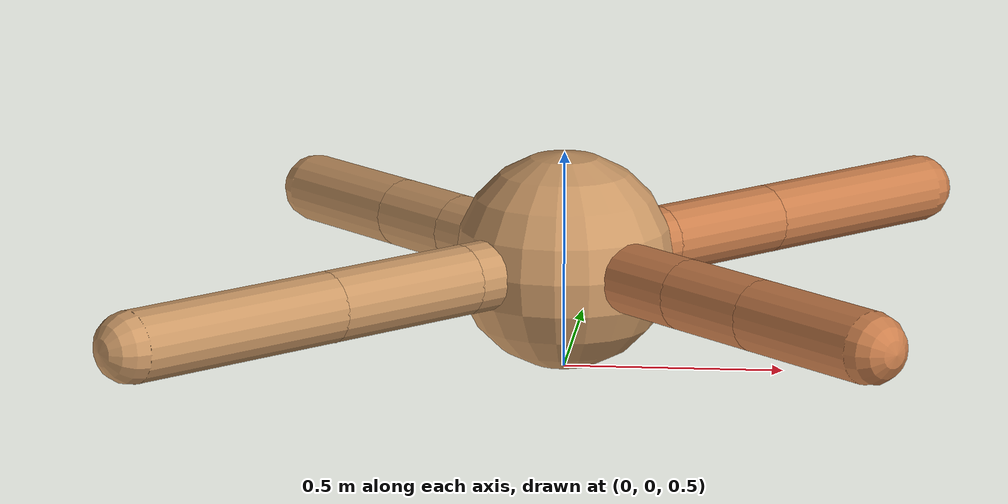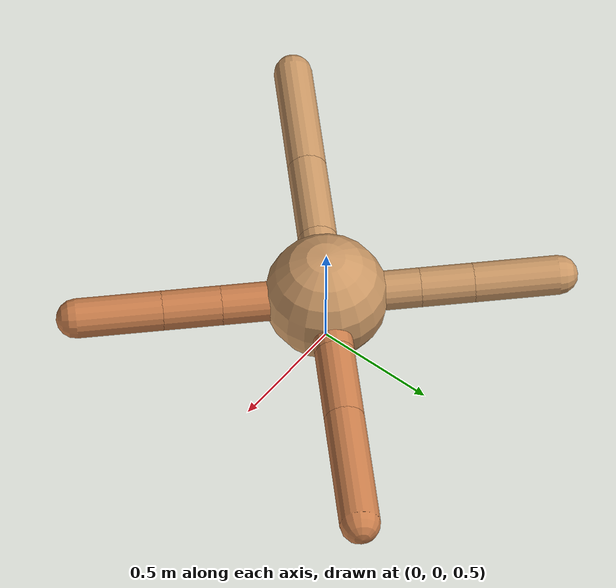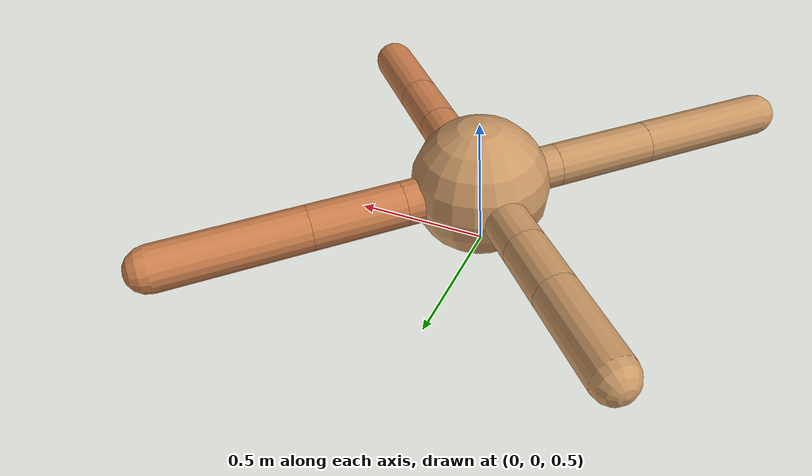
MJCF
<mujoco model="ant">
  <compiler angle="degree" coordinate="local" inertiafromgeom="true" />
  <option integrator="RK4" timestep="0.01" />
  <custom>
    <numeric data="0.0 0.0 0.55 1.0 0.0 0.0 0.0 0.0 1.0 0.0 -1.0 0.0 -1.0 0.0 1.0" name="init_qpos" />
  </custom>
  <default>
    <joint armature="1" damping="1" limited="true" />
    <geom conaffinity="0" condim="3" density="5.0" friction="1.5 0.1 0.1" margin="0.01" rgba="0.8 0.6 0.4 1" />
  </default>
  <worldbody>
    <body name="torso" pos="0 0 0.75">
      <geom name="torso_geom" pos="0 0 0" size="0.25" type="sphere" />

      <body name="front_left_leg" pos="0 0 0">
        <geom fromto="0.0 0.0 0.0 0.20476721876617915 0.20476721876617915 0.0" name="aux_1_geom" size="0.08" type="capsule" rgba=".8 .5 .3 1" />
        <body name="aux_1" pos="0.20476721876617915 0.20476721876617915 0.0">
          <joint axis="0 0 1" name="hip_1" pos="0.0 0.0 0.0" range="-40 40" type="hinge" />
          <geom fromto="0.0 0.0 0.0 0.23021529286917353 0.23021529286917353 0.0" name="left_leg_geom" size="0.08" type="capsule" rgba=".8 .5 .3 1" />
          <body pos="0.23021529286917353 0.23021529286917353 0.0" name="front_left_foot">
            <joint axis="-1 1 0" name="ankle_1" pos="0.0 0.0 0.0" range="30 100" type="hinge" />
            <geom fromto="0.0 0.0 0.0 0.35720289359163365 0.35720289359163365 0.0" name="left_ankle_geom" size="0.08" type="capsule" rgba=".8 .5 .3 1" />
          </body>
        </body>
      </body>
      <body name="front_right_leg" pos="0 0 0">
        <geom fromto="0.0 0.0 0.0 -0.2666737634477007 0.2666737634477007 0.0" name="aux_2_geom" size="0.08" type="capsule" />
        <body name="aux_2" pos="-0.2666737634477007 0.2666737634477007 0.0">
          <joint axis="0 0 1" name="hip_2" pos="0.0 0.0 0.0" range="-40 40" type="hinge" />
          <geom fromto="0.0 0.0 0.0 -0.1524553081203904 0.1524553081203904 0.0" name="right_leg_geom" size="0.08" type="capsule" />
          <body pos="-0.1524553081203904 0.1524553081203904 0.0" name="front_right_foot">
            <joint axis="1 1 0" name="ankle_2" pos="0.0 0.0 0.0" range="-100 -30" type="hinge" />
            <geom fromto="0.0 0.0 0.0 -0.24343416915186147 0.24343416915186147 0.0" name="right_ankle_geom" size="0.08" type="capsule" />
          </body>
        </body>
      </body>
      <body name="left_back_leg" pos="0 0 0">
        <geom fromto="0.0 0.0 0.0 -0.20985516837279522 -0.20985516837279522 0.0" name="aux_3_geom" size="0.08" type="capsule" />
        <body name="aux_3" pos="-0.20985516837279522 -0.20985516837279522 0.0">
          <joint axis="0 0 1" name="hip_3" pos="0.0 0.0 0.0" range="-40 40" type="hinge" />
          <geom fromto="0.0 0.0 0.0 -0.2655344100986091 -0.2655344100986091 0.0" name="back_leg_geom" size="0.08" type="capsule" />
          <body pos="-0.2655344100986091 -0.2655344100986091 0.0" name="left_back_foot">
            <joint axis="-1 1 0" name="ankle_3" pos="0.0 0.0 0.0" range="-100 -30" type="hinge" />
            <geom fromto="0.0 0.0 0.0 -0.36719133295555584 -0.36719133295555584 0.0" name="third_ankle_geom" size="0.08" type="capsule" />
          </body>
        </body>
      </body>
      <body name="right_back_leg" pos="0 0 0">
        <geom fromto="0.0 0.0 0.0 0.2969465871864352 -0.2969465871864352 0.0" name="aux_4_geom" size="0.08" type="capsule" rgba=".8 .5 .3 1" />
        <body name="aux_4" pos="0.2969465871864352 -0.2969465871864352 0.0">
          <joint axis="0 0 1" name="hip_4" pos="0.0 0.0 0.0" range="-40 40" type="hinge" />
          <geom fromto="0.0 0.0 0.0 0.16726455194918544 -0.16726455194918544 0.0" name="rightback_leg_geom" size="0.08" type="capsule" rgba=".8 .5 .3 1" />
          <body pos="0.16726455194918544 -0.16726455194918544 0.0" name="right_back_foot">
            <joint axis="1 1 0" name="ankle_4" pos="0.0 0.0 0.0" range="30 100" type="hinge" />
            <geom fromto="0.0 0.0 0.0 0.24419934070643934 -0.24419934070643934 0.0" name="fourth_ankle_geom" size="0.08" type="capsule" rgba=".8 .5 .3 1" />
          </body>
        </body>
      </body>
    </body>
  </worldbody>
  <actuator>
    <motor ctrllimited="true" ctrlrange="-1.0 1.0" joint="hip_4" gear="150" />
    <motor ctrllimited="true" ctrlrange="-1.0 1.0" joint="ankle_4" gear="150" />
    <motor ctrllimited="true" ctrlrange="-1.0 1.0" joint="hip_1" gear="150" />
    <motor ctrllimited="true" ctrlrange="-1.0 1.0" joint="ankle_1" gear="150" />
    <motor ctrllimited="true" ctrlrange="-1.0 1.0" joint="hip_2" gear="150" />
    <motor ctrllimited="true" ctrlrange="-1.0 1.0" joint="ankle_2" gear="150" />
    <motor ctrllimited="true" ctrlrange="-1.0 1.0" joint="hip_3" gear="150" />
    <motor ctrllimited="true" ctrlrange="-1.0 1.0" joint="ankle_3" gear="150" />
  </actuator>
</mujoco>
